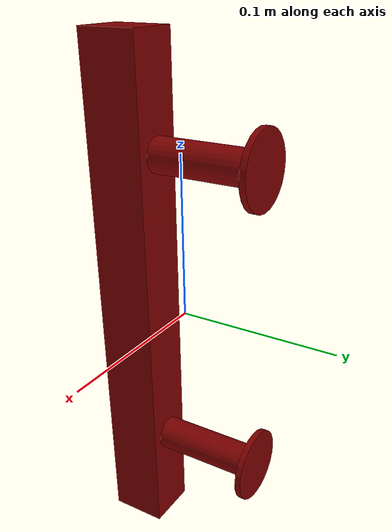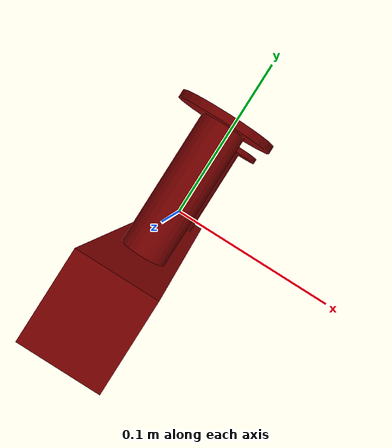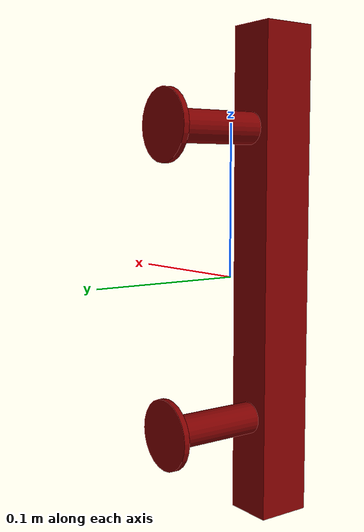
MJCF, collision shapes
<?xml version='1.0' encoding='UTF-8'?>
<mujoco model="model">
  <option timestep="0.002" gravity="0.0 0.0 -9.81"/>
  <compiler angle="radian"/>
  <asset>
    <mesh file="visuals/CabinetHandle029.obj" name="CabinetHandle029_vis"/>
    <texture file="visuals/T_BC001.png" name="tex" type="2d"/>
    <material name="mat" rgba="1 1 1 1.0" texture="tex" shininess="0.5999999940395355" specular="0.3103448502657381"/>
  </asset>
  <default>
    <default class="visual">
      <geom conaffinity="0" contype="0" group="1" type="mesh"/>
    </default>
    <default class="collision">
      <geom group="0" rgba="0.5 0 0 0.5" density="1.0" solref="0.004 1" solimp="0.998 0.998 0.001"/>
    </default>
    <default class="spawn">
      <geom group="0" rgba="1 1 1 0.5" contype="0" conaffinity="0"/>
      <site group="0" rgba="1 1 1 0.5"/>
    </default>
    <default class="region">
      <geom group="1" conaffinity="0" contype="0" rgba="0 1 0 0" mass="0"/>
    </default>
  </default>
  <worldbody>
    <body>
      <body name="object">
        <geom mesh="CabinetHandle029_vis" type="mesh" solimp="0.998 0.998 0.001" solref="0.001 1" friction="0.95 0.3 0.1" class="visual" material="mat"/>
        <geom type="box" pos="0.00000002 -0.03453799 0.00001260" size="0.016705166548490524 0.01858033426105976 0.16511794924736023" quat="1.0 0.0 0.0 0.0" class="collision"/>
        <geom type="cylinder" pos="0.00001952 0.01478244 -0.09745285" size="0.010716565884649754 0.03486405685544014" quat="0.4999997913837433 0.5000002384185791 0.4999997615814209 -0.5000001788139343" class="collision"/>
        <geom type="cylinder" pos="0.00001952 0.05121182 -0.09745285" size="0.023220378905534744 0.0019157625501975417" quat="0.4999997913837433 0.5000002384185791 0.4999997615814209 -0.5000001788139343" class="collision"/>
        <geom type="cylinder" pos="0.00001955 0.01478244 0.09744683" size="0.010716565884649754 0.03486405685544014" quat="0.4999997913837433 0.5000002384185791 0.4999997615814209 -0.5000001788139343" class="collision"/>
        <geom type="cylinder" pos="0.00001955 0.05121172 0.09744683" size="0.023220378905534744 0.0019156578928232193" quat="0.4999997913837433 0.5000002384185791 0.4999997615814209 -0.5000001788139343" class="collision"/>
        <geom class="region" name="reg_main" type="box" pos="-4.999999999102944e-09 -1.3999999999916857e-07 -4.999999997368221e-09" size="0.024131015 0.05412776 0.166131035"/>
      </body>
    </body>
  </worldbody>
  <actuator/>
</mujoco>
